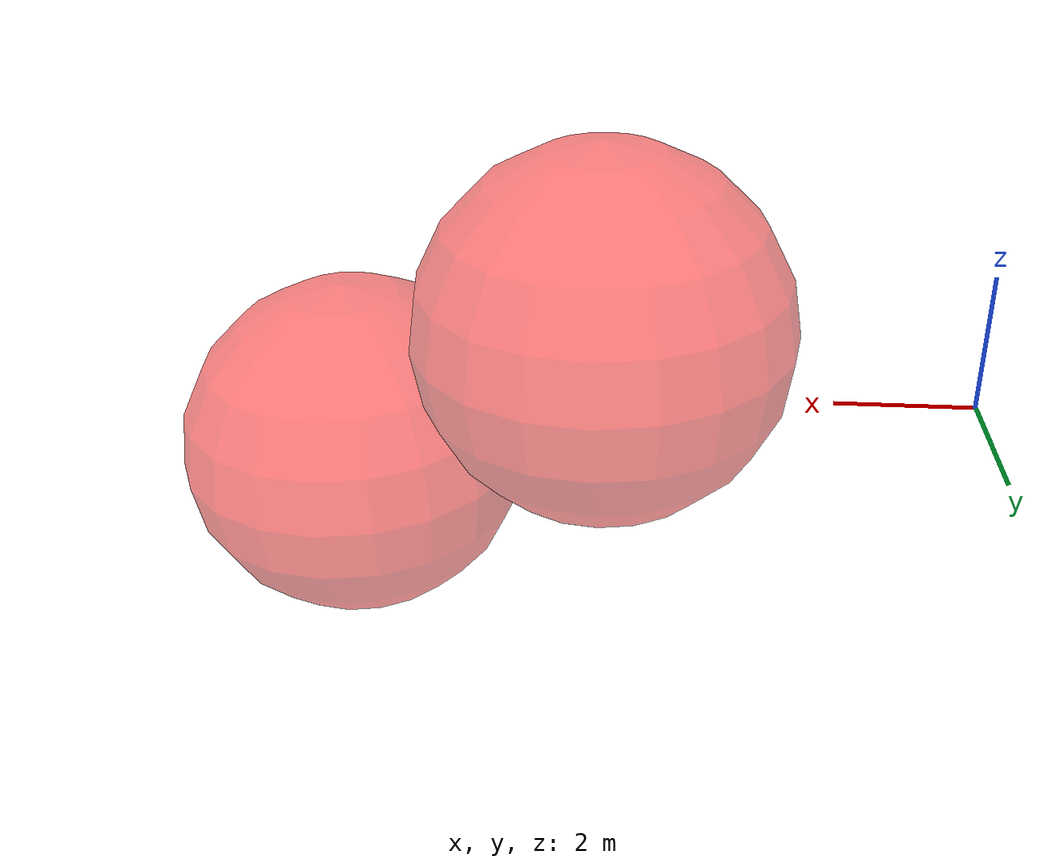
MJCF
<?xml version='1.0' encoding='utf-8'?>
<mujoco model="obstacles"><worldbody><body name="obstacle_0" pos="5 4 3"><geom type="sphere" size="2" mass="1.0" rgba="1 0 0 0.5" /></body><body name="obstacle_1" pos="8 3 1"><geom type="sphere" size="2" mass="1.0" rgba="1 0 0 0.5" /></body></worldbody><actuator /></mujoco>
